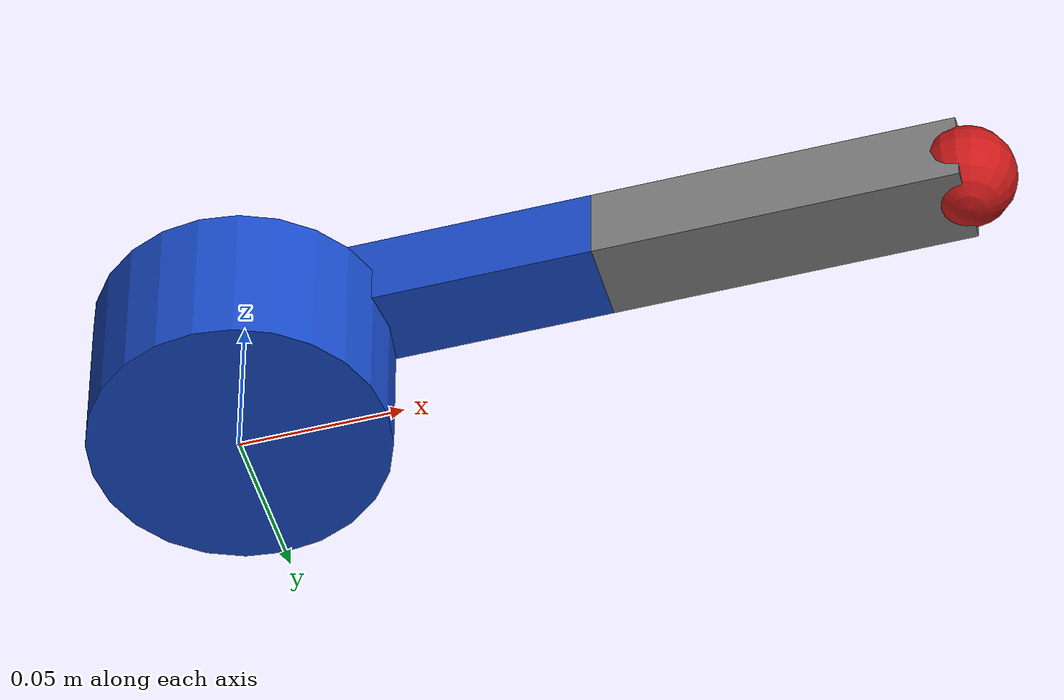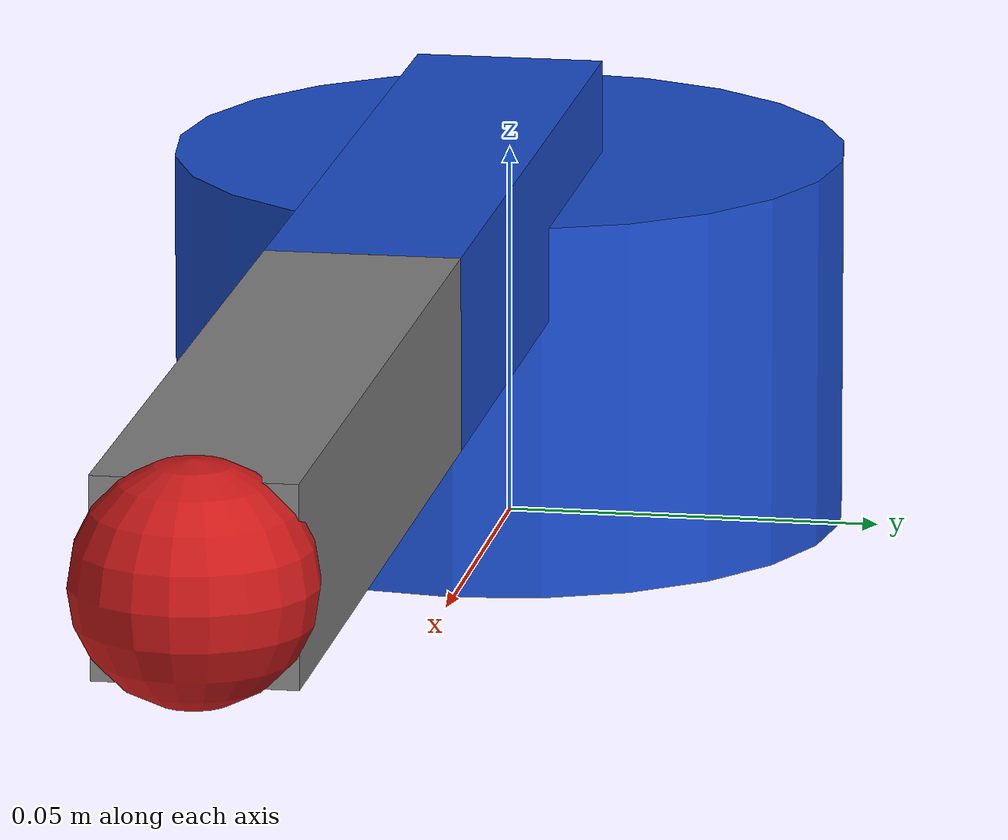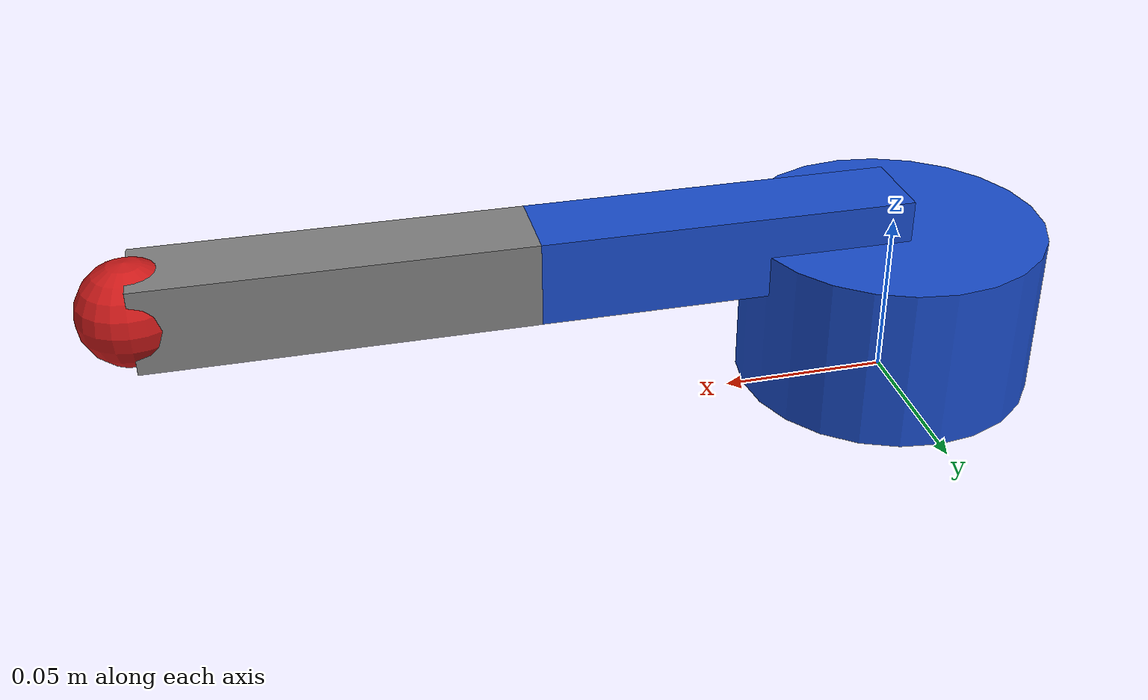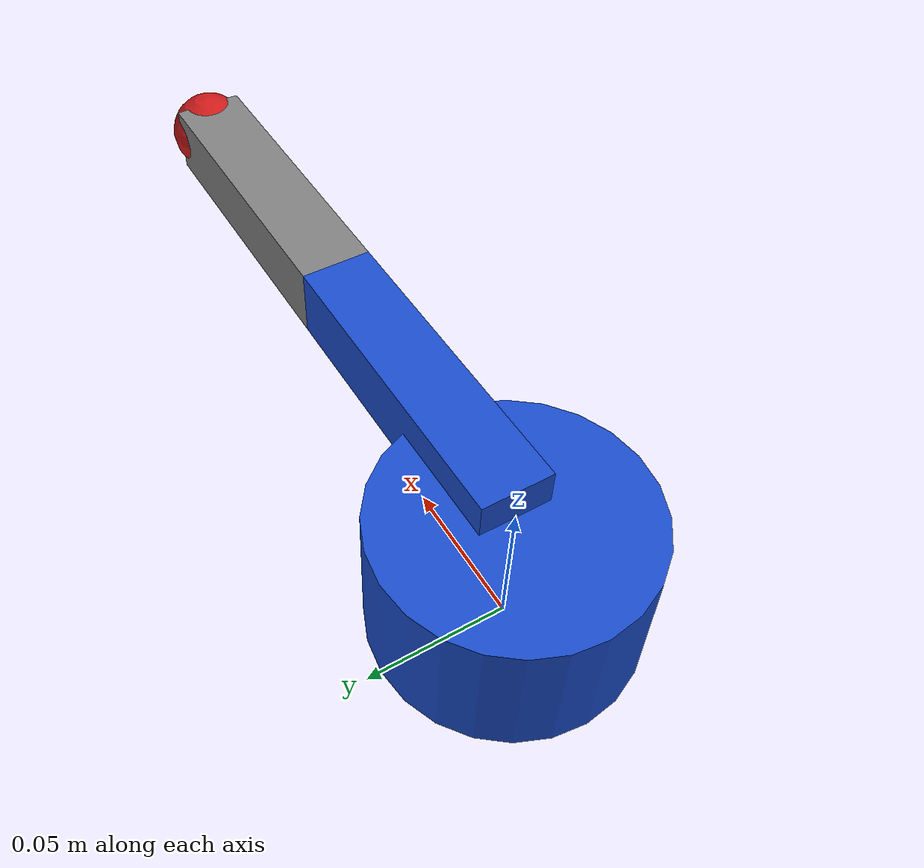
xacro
<?xml version="1.0"?>

<robot xmlns:xacro="http://www.ros.org/wiki/xacro"
       name="three_r_robot">

  <!-- PARAMETERS                                            -->

  <!-- All dimensions are in metres for ROS/Gazebo -->

  <xacro:property name="L1" value="0.05"/>
  <xacro:property name="L2" value="0.11"/>
  <xacro:property name="L3" value="0.11"/>

  <xacro:property name="base_radius" value="0.045"/>

  <xacro:property name="link_width" value="0.025"/>
  <xacro:property name="link_height" value="0.025"/>

  <!-- MATERIALS                                             -->

  <material name="blue">
    <color rgba="0.1 0.3 0.8 1.0"/>
  </material>

  <material name="grey">
    <color rgba="0.5 0.5 0.5 1.0"/>
  </material>

  <material name="red">
    <color rgba="0.8 0.1 0.1 1.0"/>
  </material>

  <!-- WORLD                                                 -->

  <link name="world"/>

  <!-- JOINT 1 - BASE YAW                                   -->

  <joint name="joint1"
         type="revolute">

    <parent link="world"/>
    <child link="base_link"/>

    <origin
      xyz="0 0 0"
      rpy="0 0 0"/>

    <axis xyz="0 0 1"/>

    <limit
      lower="0.0"
      upper="3.14159265"
      effort="20"
      velocity="2.0"/>

    <dynamics
      damping="0.2"
      friction="0.05"/>

  </joint>

  <!-- BASE                                                 -->

  <link name="base_link">

    <visual>

      <origin
        xyz="0 0 ${L1/2}"
        rpy="0 0 0"/>

      <geometry>

        <cylinder
          radius="${base_radius}"
          length="${L1}"/>

      </geometry>

      <material name="blue"/>

    </visual>

    <collision>

      <origin
        xyz="0 0 ${L1/2}"
        rpy="0 0 0"/>

      <geometry>

        <cylinder
          radius="${base_radius}"
          length="${L1}"/>

      </geometry>

    </collision>

    <inertial>

      <origin
        xyz="0 0 ${L1/2}"
        rpy="0 0 0"/>

      <mass value="0.5"/>

      <inertia
        ixx="0.0002"
        ixy="0.0"
        ixz="0.0"
        iyy="0.0002"
        iyz="0.0"
        izz="0.0002"/>

    </inertial>

  </link>

  <!-- JOINT 2 - SHOULDER                                   -->

  <joint name="joint2"
         type="revolute">

    <parent link="base_link"/>
    <child link="link1"/>

    <origin
      xyz="0 0 ${L1}"
      rpy="0 0 0"/>

    <!-- Negative Y gives the same direction as your FK -->

    <axis xyz="0 -1 0"/>

    <limit
      lower="0.0"
      upper="3.14159265"
      effort="20"
      velocity="2.0"/>

    <dynamics
      damping="0.2"
      friction="0.05"/>

  </joint>

  <!-- LINK 1                                               -->

  <link name="link1">

    <visual>

      <origin
        xyz="${L2/2} 0 0"
        rpy="0 0 0"/>

      <geometry>

        <box
          size="${L2} ${link_width} ${link_height}"/>

      </geometry>

      <material name="blue"/>

    </visual>

    <collision>

      <origin
        xyz="${L2/2} 0 0"
        rpy="0 0 0"/>

      <geometry>

        <box
          size="${L2} ${link_width} ${link_height}"/>

      </geometry>

    </collision>

    <inertial>

      <origin
        xyz="${L2/2} 0 0"
        rpy="0 0 0"/>

      <mass value="0.30"/>

      <inertia
        ixx="0.0001"
        ixy="0.0"
        ixz="0.0"
        iyy="0.0001"
        iyz="0.0"
        izz="0.0001"/>

    </inertial>

  </link>

  <!-- JOINT 3 - ELBOW                                     -->

  <joint name="joint3"
         type="revolute">

    <parent link="link1"/>
    <child link="link2"/>

    <origin
      xyz="${L2} 0 0"
      rpy="0 0 0"/>

    <!-- Negative Y -->

    <axis xyz="0 -1 0"/>

    <!-- DH theta3 = -90 to +90 -->

    <limit
      lower="-1.57079633"
      upper="1.57079633"
      effort="20"
      velocity="2.0"/>

    <dynamics
      damping="0.2"
      friction="0.05"/>

  </joint>

  <!-- LINK 2                                               -->

  <link name="link2">

    <visual>

      <origin
        xyz="${L3/2} 0 0"
        rpy="0 0 0"/>

      <geometry>

        <box
          size="${L3} ${link_width} ${link_height}"/>

      </geometry>

      <material name="grey"/>

    </visual>

    <collision>

      <origin
        xyz="${L3/2} 0 0"
        rpy="0 0 0"/>

      <geometry>

        <box
          size="${L3} ${link_width} ${link_height}"/>

      </geometry>

    </collision>

    <inertial>

      <origin
        xyz="${L3/2} 0 0"
        rpy="0 0 0"/>

      <mass value="0.25"/>

      <inertia
        ixx="0.0001"
        ixy="0.0"
        ixz="0.0"
        iyy="0.0001"
        iyz="0.0"
        izz="0.0001"/>

    </inertial>

  </link>

  <!-- END EFFECTOR JOINT                                   -->

  <joint name="end_effector_joint"
         type="fixed">

    <parent link="link2"/>
    <child link="end_effector"/>

    <origin
      xyz="${L3} 0 0"
      rpy="0 0 0"/>

  </joint>

  <!-- END EFFECTOR                                         -->

  <link name="end_effector">

    <visual>

      <origin
        xyz="0 0 0"
        rpy="0 0 0"/>

      <geometry>

        <sphere
          radius="0.015"/>

      </geometry>

      <material name="red"/>

    </visual>

    <collision>

      <origin
        xyz="0 0 0"
        rpy="0 0 0"/>

      <geometry>

        <sphere
          radius="0.015"/>

      </geometry>

    </collision>

    <inertial>

      <origin
        xyz="0 0 0"
        rpy="0 0 0"/>

      <mass value="0.05"/>

      <inertia
        ixx="0.00001"
        ixy="0.0"
        ixz="0.0"
        iyy="0.00001"
        iyz="0.0"
        izz="0.00001"/>

    </inertial>

  </link>

  <!-- ROS 2 CONTROL                                        -->

  <ros2_control
      name="GazeboSystem"
      type="system">

    <hardware>

      <plugin>
        gz_ros2_control/GazeboSimSystem
      </plugin>

    </hardware>

    <!-- JOINT 1 -->

    <joint name="joint1">

      <command_interface name="position"/>

      <state_interface name="position"/>

    </joint>

    <!-- JOINT 2 -->

    <joint name="joint2">

      <command_interface name="position"/>

      <state_interface name="position"/>

    </joint>

    <!-- JOINT 3 -->

    <joint name="joint3">

      <command_interface name="position"/>

      <state_interface name="position"/>

    </joint>

  </ros2_control>

  <!-- GAZEBO / GZ ROS 2 CONTROL                           -->

  <gazebo>

    <plugin
      filename="libgz_ros2_control-system.so"
      name="gz_ros2_control::GazeboSimROS2ControlPlugin">

      <parameters>
        /home/astram/ros2_3r_ws/src/three_r_robot/config/controllers.yaml
      </parameters>

    </plugin>

  </gazebo>

</robot>
